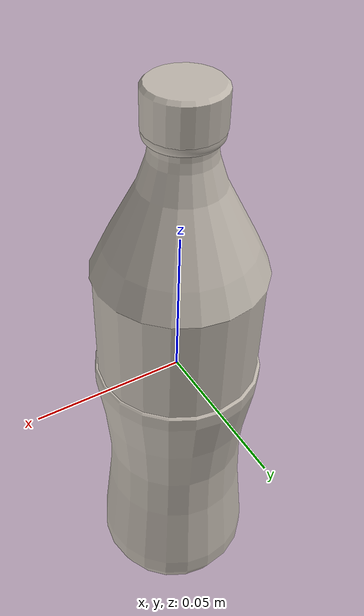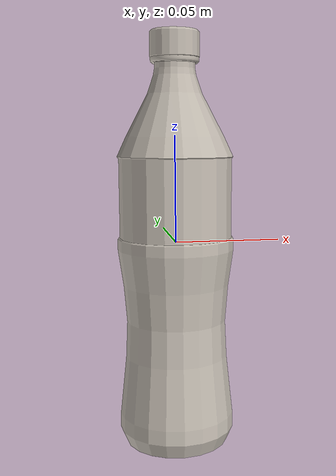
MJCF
<?xml version='1.0' encoding='utf-8'?>
<mujoco model="bottled_water_15">
  <asset>
    <mesh file="visual/model_normalized_0.obj" name="model_normalized_0_vis" scale="0.193939 0.193939 0.193939" refquat="1.0 0.0 0.0 0.0" />
    <mesh file="visual/model_normalized_1.obj" name="model_normalized_1_vis" scale="0.193939 0.193939 0.193939" refquat="1.0 0.0 0.0 0.0" />
    <mesh file="visual/model_normalized_2.obj" name="model_normalized_2_vis" scale="0.193939 0.193939 0.193939" refquat="1.0 0.0 0.0 0.0" />
    <texture type="2d" name="image1" file="visual/image1.png" />
    <texture type="2d" name="image0" file="visual/image0.png" />
    <material name="Bottle.003" specular="0.5" shininess="0.811813944" rgba="1.000000 1.000000 1.000000 1.0" />
    <material name="Label.001" texture="image1" specular="0.5" shininess="0.25" />
    <material name="material.008" texture="image0" specular="0.5" shininess="0.25" />
    <mesh file="collision/collision_mesh_collision_0.obj" name="bottled_collision_mesh_0" scale="0.193939 0.193939 0.193939" refquat="1.0 0.0 0.0 0.0" />
    <mesh file="collision/collision_mesh_collision_1.obj" name="bottled_collision_mesh_1" scale="0.193939 0.193939 0.193939" refquat="1.0 0.0 0.0 0.0" />
    <mesh file="collision/collision_mesh_collision_2.obj" name="bottled_collision_mesh_2" scale="0.193939 0.193939 0.193939" refquat="1.0 0.0 0.0 0.0" />
    </asset>
  <default>
    <default class="region">
      <geom group="1" conaffinity="0" contype="0" rgba="0 1 0 0" />
      </default>
    <default class="collision">
      <geom group="3" rgba="0.5 0 0 0.5" density="1000.0" />
      </default>
    </default>
  <worldbody>
    <body>
      <body name="object">
        <geom density="100" friction="0.95 0.3 0.1" type="mesh" mesh="model_normalized_0_vis" conaffinity="0" contype="0" group="1" material="Label.001" />
        <geom density="100" friction="0.95 0.3 0.1" type="mesh" mesh="model_normalized_1_vis" conaffinity="0" contype="0" group="1" material="Bottle.003" />
        <geom density="100" friction="0.95 0.3 0.1" type="mesh" mesh="model_normalized_2_vis" conaffinity="0" contype="0" group="1" material="material.008" />
        <geom class="region" name="reg_bbox" type="box" pos="3.818160000000015e-05 0.0002536240000000012 -6.763039999999748e-05" size="0.023344934400000003 0.0232692384 0.07971717919999999" />
        <geom mesh="bottled_collision_mesh_0" type="mesh" class="collision"  solref="0.004 1" solimp="0.998 0.998 0.001"/>
        <geom mesh="bottled_collision_mesh_1" type="mesh" class="collision"  solref="0.004 1" solimp="0.998 0.998 0.001"/>
        <geom mesh="bottled_collision_mesh_2" type="mesh" class="collision"  solref="0.004 1" solimp="0.998 0.998 0.001"/>
        </body>
      </body>
    </worldbody>
  </mujoco>
